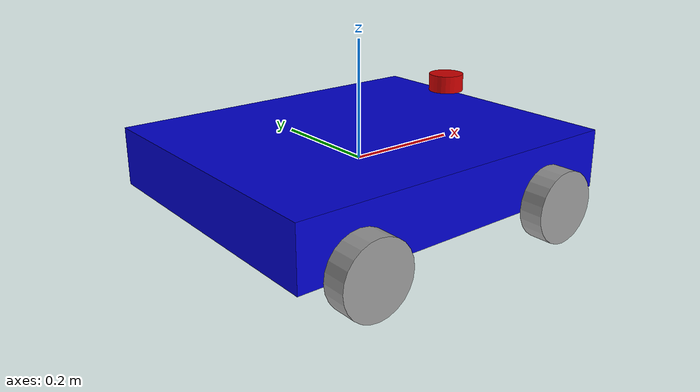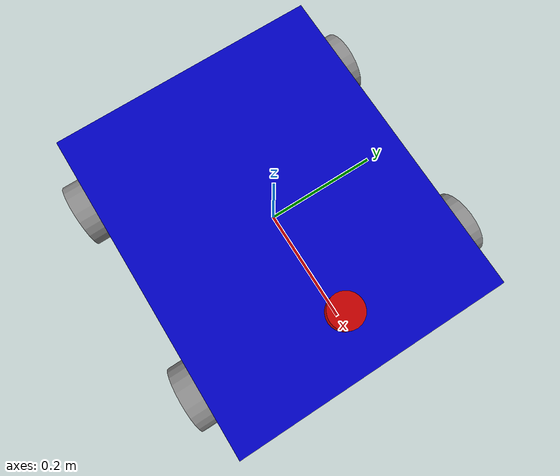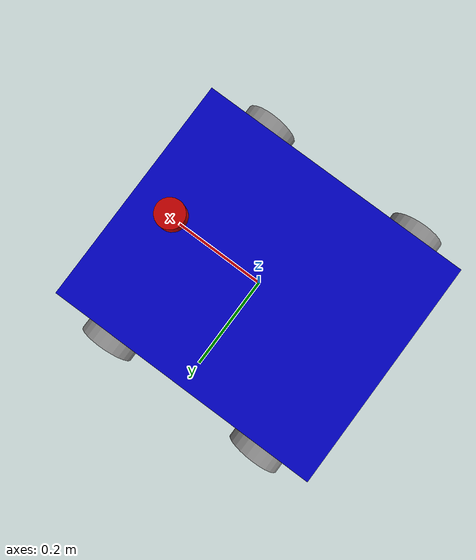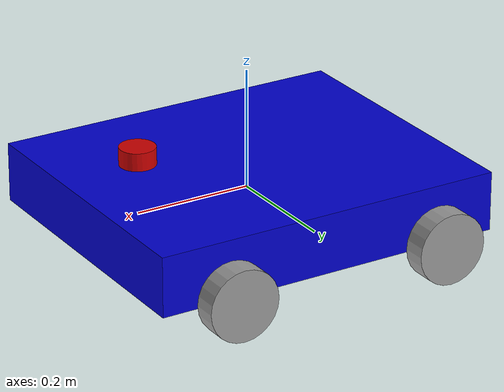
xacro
<?xml version="1.0"?>

<robot name="smart_car_v0" xmlns:xacro="http://www.ros.org/wiki/xacro">
    <xacro:arg name="car_name" default="car0" />
    <xacro:arg name="car_namespace" default="A" />
    <xacro:include filename="$(find simulator)/urdf/mecanum.xacro" />
    <xacro:mecanum/>
    <xacro:include filename="$(find simulator)/urdf/drive.gazebo" />
    <xacro:base_mecanum_gazebo/>
</robot>

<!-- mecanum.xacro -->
<robot name="mecanum" xmlns:xacro="http://www.ros.org/wiki/xacro">

    <material name="blue">
        <color rgba="0 0 0.8 1"/>
    </material>
    <material name="black">
        <color rgba="0 0 0 1"/>
    </material>
    <material name="white">
        <color rgba="1 1 1 1"/>
    </material>
    <material name="red">
        <color rgba="0.8 0.0 0.0 1.0"/>
    </material>

    <xacro:macro name="default_inertial" params="mass">
        <inertial>
            <mass value="${mass}"/>
            <inertia ixx="1.0" ixy="0.0" ixz="0.0" iyy="1.0" iyz="0.0" izz="1.0"/>
        </inertial>
    </xacro:macro>

    <xacro:macro name="mecanum">
        <link name="base_footprint"/>
        <link name="base_link">
            <inertial>
                <mass value="15"/>
                <origin rpy="0 0 0 " xyz="0 0 0"/>
                <inertia ixx="0.3625" ixy="0" ixz="0" iyy="0.5" iyz="0" izz="0.7625"/>
            </inertial>

            <collision>
                <origin rpy="0 0 0" xyz="0 0 0"/>
                <geometry>
                    <box size="0.6 0.5 0.1"/>
                </geometry>
            </collision>

            <visual>
                <origin rpy="0 0 0" xyz="0 0 0"/>
                <geometry>
                    <box size="0.6 0.5 0.1"/>
                </geometry>
                <material name="blue"/>
            </visual>
        </link>

        <joint name="base_joint" type="fixed">
            <origin xyz="0 0 0" rpy="0 0 0" />
            <parent link="base_footprint"/>
            <child link="base_link" />
        </joint>

        <joint name="join_left_front" type="fixed">
            <origin xyz="0.18 0.25 -0.045" rpy="0 0 1.57"/>
            <parent link="base_link"/>
            <child link="link_left_front"/>
            <axis xyz="1 0 0" />
            <limit effort="30" velocity="17.4" />
        </joint>

        <link name="link_left_front">
            <pose>0 0 0 0 0 0</pose>
            <inertial>
                <mass value="0.5"/>
                <origin xyz="0.02 0 0" rpy="0 1.57 0"/>
                <inertia ixx="0.0005" ixy="0" ixz="0" iyy="0.0005" iyz="0" izz="0.0009"/>
            </inertial>

            <collision>
                <origin xyz="0.02 0 0" rpy="0 1.57 0"/>
                <geometry>
                        <cylinder radius="0.06" length="0.04"/>
                </geometry>
            </collision>

            <visual>
                <origin xyz="0.02 0 0" rpy="0 1.57 0"/>
                <geometry>
                        <cylinder radius="0.06" length="0.04"/>
                </geometry>
                <material name="wheels">
                    <color rgba="0.6 0.6 0.6 1" />
                </material>
            </visual>
        </link>

        <joint name="join_right_front" type="fixed">
            <origin xyz="0.18 -0.25 -0.045" rpy="0 0 1.57"/>
            <parent link="base_link"/>
            <child link="link_right_front"/>
            <axis xyz="1 0 0" />
            <limit effort="30" velocity="17.4" />
        </joint>

        <link name="link_right_front">
            <pose>0 0 0 0 0 0</pose>
            <inertial>
                <mass value="0.5"/>
                <origin xyz="-0.02 0 0" rpy="0 1.57 0"/>
                <inertia ixx="0.0005" ixy="0" ixz="0" iyy="0.0005" iyz="0" izz="0.0009"/>
            </inertial>

            <collision>
                <origin xyz="-0.02 0 0" rpy="0 1.57 0"/>
                <geometry>
                    <cylinder radius="0.06" length="0.04"/>
                </geometry>
            </collision>

            <visual>
                <origin xyz="-0.02 0 0" rpy="0 1.57 0"/>
                <geometry>
                    <cylinder radius="0.06" length="0.04"/>
                </geometry>
                <material name="wheels">
                    <color rgba="0.6 0.6 0.6 1" />
                </material>
            </visual>
        </link>

        <joint name="join_left_back" type="fixed">
            <origin xyz="-0.2 0.25 -0.045" rpy="0 0 1.57"/>
            <parent link="base_link"/>
            <child link="link_left_back"/>
            <axis xyz="1 0 0" />
            <limit effort="30" velocity="17.4" />
        </joint>

        <link name="link_left_back">
            <pose>0 0 0 0 0 0</pose>

            <inertial>
                <mass value="0.5"/>
                <origin xyz="0.02 0 0" rpy="0 1.57 0"/>
                <inertia ixx="0.0005" ixy="0" ixz="0" iyy="0.0005" iyz="0" izz="0.0009"/>
            </inertial>

            <collision>
                <origin xyz="0.02 0 0" rpy="0 1.57 0"/>
                <geometry>
                    <cylinder radius="0.06" length="0.04"/>
                </geometry>
            </collision>

            <visual>
                <origin xyz="0.02 0 0" rpy="0 1.57 0"/>
                <geometry>
                    <cylinder radius="0.06" length="0.04"/>
                </geometry>
                <material name="wheels">
                    <color rgba="0.6 0.6 0.6 1" />
                </material>
            </visual>
        </link>

        <joint name="join_right_back" type="fixed">
            <origin xyz="-0.2 -0.25 -0.045" rpy="0 0 1.57"/>
            <parent link="base_link"/>
            <child link="link_right_back"/>
            <axis xyz="1 0 0" />
            <limit effort="30" velocity="17.4" />
        </joint>

        <link name="link_right_back">
            <pose>0 0 0 0 0 0</pose>

            <inertial>
                <mass value="0.5"/>
                <origin xyz="-0.02 0 0" rpy="0 1.57 0"/>
                <inertia ixx="0.0005" ixy="0" ixz="0" iyy="0.0005" iyz="0" izz="0.0009"/>
            </inertial>

            <collision>
                <origin xyz="-0.02 0 0" rpy="0 1.57 0"/>
                <geometry>
                    <cylinder radius="0.06" length="0.04"/>
                </geometry>
            </collision>

            <visual>
                <origin xyz="-0.02 0 0" rpy="0 1.57 0"/>
                <geometry>
                    <cylinder radius="0.06" length="0.04"/>
                </geometry>
                <material name="wheels">
                    <color rgba="0.6 0.6 0.6 1" />
                </material>
            </visual>
        </link>

        <joint name="joint_laser" type="fixed">
            <origin xyz="0.2 0 0.1" rpy="0 0 0"/>
            <parent link="base_link"/>
            <child link="laser1"/>
        </joint>

        <link name="laser1">
            <pose>0 0 0 0 0 0</pose>
            <inertial>
                <mass value="0.2"/>
                <origin xyz="0 0 0" rpy="0 0 0"/>
                <inertia ixx="0.0005" ixy="0" ixz="0" iyy="0.0005" iyz="0" izz="0.0009"/>
            </inertial>

            <collision>
                <origin xyz="0 0 0" rpy="0 0 0"/>
                <geometry>
                    <cylinder radius="0.03" length="0.03"/>
                </geometry>
            </collision>

            <visual>
                <origin xyz="0 0 0" rpy="0 0 0"/>
                <geometry>
                    <cylinder radius="0.03" length="0.03"/>
                </geometry>
                <material name="red"/>
            </visual>
        </link>
    </xacro:macro>
</robot>
